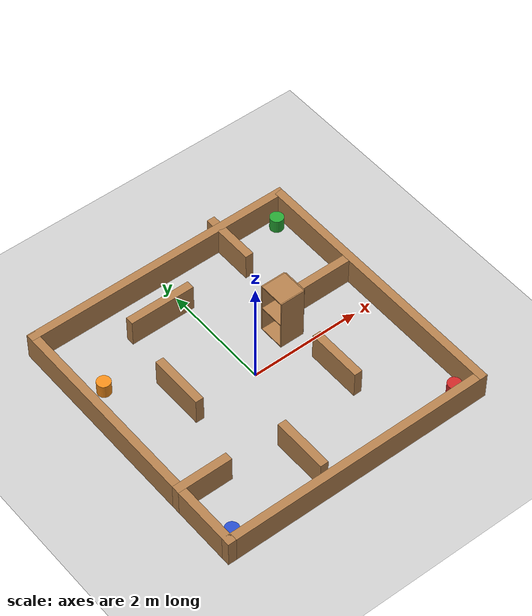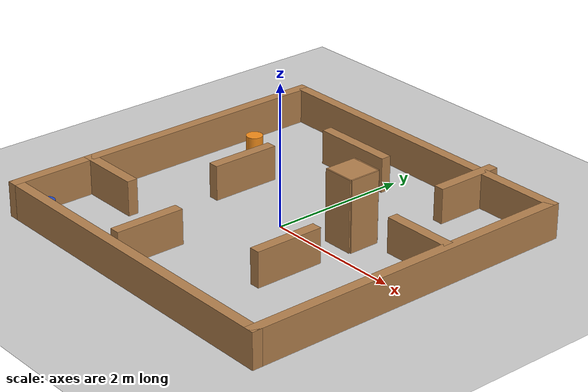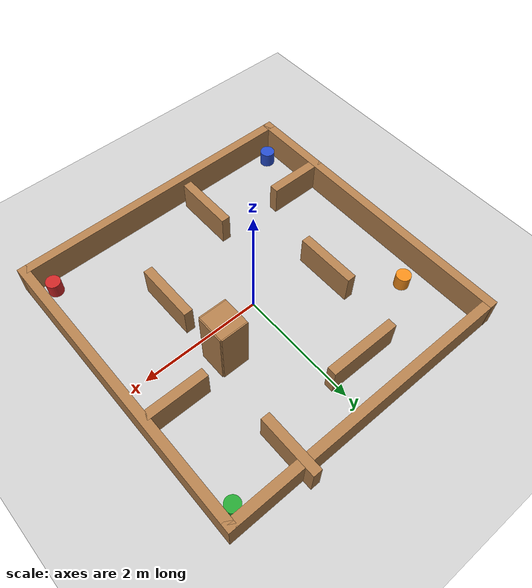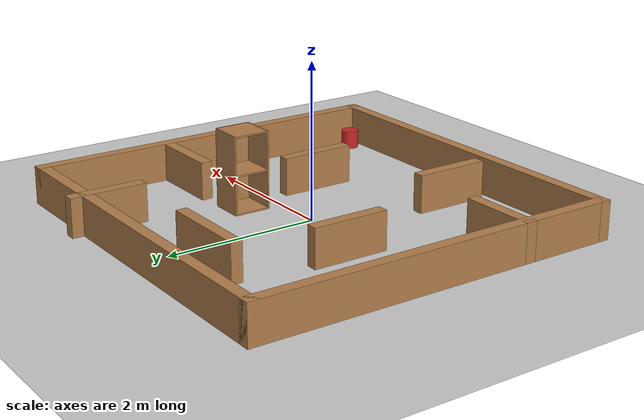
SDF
<sdf version="1.7">
 <world name="default">
  <model name="ground_plane">
   <static>1</static>
   <link name="link">
    <collision name="collision">
     <geometry><plane><normal>0 0 1</normal><size>100 100</size></plane></geometry>
     <surface><friction><ode><mu>100</mu><mu2>50</mu2></ode></friction></surface>
    </collision>
    <visual name="visual">
     <cast_shadows>0</cast_shadows>
     <geometry><plane><normal>0 0 1</normal><size>100 100</size></plane></geometry>
     <material>
      <script><uri>file://media/materials/scripts/gazebo.material</uri><name>Gazebo/Grey</name></script>
     </material>
    </visual>
   </link>
  </model>
  <light name="sun" type="directional">
   <pose>0 0 10 0 -0 0</pose>
   <diffuse>0.8 0.8 0.8 1</diffuse>
   <specular>0.2 0.2 0.2 1</specular>
   <attenuation>
    <range>1000</range>
    <constant>0.9</constant>
    <linear>0.01</linear>
    <quadratic>0.001</quadratic>
   </attenuation>
   <direction>-0.5 0.1 -0.9</direction>
   <spot><inner_angle>0</inner_angle><outer_angle>0</outer_angle><falloff>0</falloff></spot>
  </light>
  <scene><shadows>0</shadows><ambient>0.4 0.4 0.4 1</ambient><background>0.7 0.7 0.7 1</background></scene>
  <physics type="ode">
   <real_time_update_rate>1000</real_time_update_rate>
   <max_step_size>0.001</max_step_size>
   <real_time_factor>1</real_time_factor>
   <ode>
    <solver>
     <type>quick</type>
     <iters>150</iters>
     <precon_iters>0</precon_iters>
     <sor>1.4</sor>
     <use_dynamic_moi_rescaling>1</use_dynamic_moi_rescaling>
    </solver>
    <constraints>
     <cfm>1e-05</cfm>
     <erp>0.2</erp>
     <contact_max_correcting_vel>2000</contact_max_correcting_vel>
     <contact_surface_layer>0.01</contact_surface_layer>
    </constraints>
   </ode>
  </physics>
  <model name="turtlebot3_dqn_world">
   <static>1</static>
   <frame name="turtlebot3_square::__model__" attached_to="turtlebot3_square::Wall_1">
    <pose relative_to="__model__">0 0 0 0 -0 0</pose>
   </frame>
   <link name="turtlebot3_square::Wall_1">
    <collision name="Wall_1_Collision">
     <geometry><box><size>5 0.15 0.5</size></box></geometry>
     <pose>0 0 0.25 0 -0 0</pose>
    </collision>
    <visual name="Wall_1_Visual">
     <pose>0 0 0.25 0 -0 0</pose>
     <geometry><box><size>5 0.15 0.5</size></box></geometry>
     <material>
      <script><uri>file://media/materials/scripts/gazebo.material</uri><name>Gazebo/Wood</name></script>
      <ambient>1 1 1 1</ambient>
     </material>
    </visual>
    <pose relative_to="turtlebot3_square::__model__">-2.425 0 0 0 -0 1.5708</pose>
   </link>
   <link name="turtlebot3_square::Wall_2">
    <collision name="Wall_2_Collision">
     <geometry><box><size>5 0.15 0.5</size></box></geometry>
     <pose>0 0 0.25 0 -0 0</pose>
    </collision>
    <visual name="Wall_2_Visual">
     <pose>0 0 0.25 0 -0 0</pose>
     <geometry><box><size>5 0.15 0.5</size></box></geometry>
     <material>
      <script><uri>file://media/materials/scripts/gazebo.material</uri><name>Gazebo/Wood</name></script>
      <ambient>1 1 1 1</ambient>
     </material>
    </visual>
    <pose relative_to="turtlebot3_square::__model__">0 2.425 0 0 -0 0</pose>
   </link>
   <link name="turtlebot3_square::Wall_3">
    <collision name="Wall_3_Collision">
     <geometry><box><size>5 0.15 0.5</size></box></geometry>
     <pose>0 0 0.25 0 -0 0</pose>
    </collision>
    <visual name="Wall_3_Visual">
     <pose>0 0 0.25 0 -0 0</pose>
     <geometry><box><size>5 0.15 0.5</size></box></geometry>
     <material>
      <script><uri>file://media/materials/scripts/gazebo.material</uri><name>Gazebo/Wood</name></script>
      <ambient>1 1 1 1</ambient>
     </material>
    </visual>
    <pose relative_to="turtlebot3_square::__model__">2.425 0 0 0 0 -1.5708</pose>
   </link>
   <link name="turtlebot3_square::Wall_4">
    <collision name="Wall_4_Collision">
     <geometry><box><size>5 0.15 0.5</size></box></geometry>
     <pose>0 0 0.25 0 -0 0</pose>
    </collision>
    <visual name="Wall_4_Visual">
     <pose>0 0 0.25 0 -0 0</pose>
     <geometry><box><size>5 0.15 0.5</size></box></geometry>
     <material>
      <script><uri>file://media/materials/scripts/gazebo.material</uri><name>Gazebo/Wood</name></script>
      <ambient>1 1 1 1</ambient>
     </material>
    </visual>
    <pose relative_to="turtlebot3_square::__model__">0 -2.425 0 0 -0 3.14159</pose>
   </link>
   <static>1</static>
  </model>
  <model name="inner_walls">
   <pose>0 0.25 0 0 -0 0</pose>
   <link name="inner_wall_1">
    <collision name="inner_wall_1_collision">
     <geometry><box><size>1 0.15 0.5</size></box></geometry>
     <pose>0 0 0.25 0 -0 0</pose>
    </collision>
    <visual name="inner_wall_visual">
     <pose>0 0 0.25 0 -0 0</pose>
     <geometry><box><size>1 0.15 0.5</size></box></geometry>
     <material>
      <script><uri>file://media/materials/scripts/gazebo.material</uri><name>Gazebo/Wood</name></script>
      <ambient>1 1 1 1</ambient>
     </material>
    </visual>
    <pose>-2 -1.5 0 0 -0 0</pose>
   </link>
   <link name="inner_wall_2">
    <collision name="inner_wall_2_collision">
     <geometry><box><size>1 0.15 0.5</size></box></geometry>
     <pose>0 0 0.25 0 -0 0</pose>
    </collision>
    <visual name="inner_wall_2_visual">
     <pose>0 0 0.25 0 -0 0</pose>
     <geometry><box><size>1 0.15 0.5</size></box></geometry>
     <material>
      <script><uri>file://media/materials/scripts/gazebo.material</uri><name>Gazebo/Wood</name></script>
      <ambient>1 1 1 1</ambient>
     </material>
    </visual>
    <pose>-0.5 -2 0 0 0 -1.5708</pose>
   </link>
   <link name="inner_wall_3">
    <collision name="inner_wall_3_collision">
     <geometry><box><size>1 0.15 0.5</size></box></geometry>
     <pose>0 0 0.25 0 -0 0</pose>
    </collision>
    <visual name="inner_wall_3_visual">
     <pose>0 0 0.25 0 -0 0</pose>
     <geometry><box><size>1 0.15 0.5</size></box></geometry>
     <material>
      <script><uri>file://media/materials/scripts/gazebo.material</uri><name>Gazebo/Wood</name></script>
      <ambient>1 1 1 1</ambient>
     </material>
    </visual>
    <pose>1 -1 0 0 -0 1.5708</pose>
   </link>
   <link name="inner_wall_4">
    <collision name="inner_wall_4_collision">
     <geometry><box><size>1 0.15 0.5</size></box></geometry>
     <pose>0 0 0.25 0 -0 0</pose>
    </collision>
    <visual name="inner_wall_4_visual">
     <pose>0 0 0.25 0 -0 0</pose>
     <geometry><box><size>1 0.15 0.5</size></box></geometry>
     <material>
      <script><uri>file://media/materials/scripts/gazebo.material</uri><name>Gazebo/Wood</name></script>
      <ambient>1 1 1 1</ambient>
     </material>
    </visual>
    <pose>1.2 1.9 0 0 0 -1.5708</pose>
   </link>
   <link name="inner_wall_5">
    <collision name="inner_wall_5_collision">
     <geometry><box><size>1 0.15 0.5</size></box></geometry>
     <pose>0 0 0.25 0 -0 0</pose>
    </collision>
    <visual name="inner_wall_5_visual">
     <pose>0 0 0.25 0 -0 0</pose>
     <geometry><box><size>1 0.15 0.5</size></box></geometry>
     <material>
      <script><uri>file://media/materials/scripts/gazebo.material</uri><name>Gazebo/Wood</name></script>
      <ambient>1 1 1 1</ambient>
     </material>
    </visual>
    <pose>1.9 0.4 0 0 -0 0</pose>
   </link>
   <link name="inner_wall_6">
    <collision name="inner_wall_6_collision">
     <geometry><box><size>1.2 0.15 0.5</size></box></geometry>
     <pose>0 0 0.25 0 -0 0</pose>
    </collision>
    <visual name="inner_wall_6_visual">
     <pose>0 0 0.25 0 -0 0</pose>
     <geometry><box><size>1.2 0.15 0.5</size></box></geometry>
     <material>
      <script><uri>file://media/materials/scripts/gazebo.material</uri><name>Gazebo/Wood</name></script>
      <ambient>1 1 1 1</ambient>
     </material>
    </visual>
    <pose>-0.5 1.5 0 0 -0 0</pose>
   </link>
   <link name="inner_wall_7">
    <collision name="inner_wall_7_collision">
     <geometry><box><size>1 0.15 0.5</size></box></geometry>
     <pose>0 0 0.25 0 -0 0</pose>
    </collision>
    <visual name="inner_wall_7_visual">
     <pose>0 0 0.25 0 -0 0</pose>
     <geometry><box><size>1 0.15 0.5</size></box></geometry>
     <material>
      <script><uri>file://media/materials/scripts/gazebo.material</uri><name>Gazebo/Wood</name></script>
      <ambient>1 1 1 1</ambient>
     </material>
    </visual>
    <pose>-1.2 0.092 0 0 0 -1.5708</pose>
   </link>
   <link name="inner_wall_8">
    <collision name="inner_wall_8_collision">
     <geometry><box><size>1 0.15 0.5</size></box></geometry>
     <pose>0 0 0.25 0 -0 0</pose>
    </collision>
    <visual name="inner_wall_8_visual">
     <pose>0 0 0.25 0 -0 0</pose>
     <geometry><box><size>1 0.15 0.5</size></box></geometry>
     <material>
      <script><uri>file://media/materials/scripts/gazebo.material</uri><name>Gazebo/Wood</name></script>
      <ambient>1 1 1 1</ambient>
     </material>
    </visual>
    <pose>-1.2 0.092 0 0 0 -1.5708</pose>
   </link>
   <static>1</static>
  </model>
  <gravity>0 0 -9.8</gravity>
  <magnetic_field>6e-06 2.3e-05 -4.2e-05</magnetic_field>
  <atmosphere type="adiabatic"/>
  <audio><device>default</device></audio>
  <spherical_coordinates>
   <surface_model>EARTH_WGS84</surface_model>
   <latitude_deg>0</latitude_deg>
   <longitude_deg>0</longitude_deg>
   <elevation>0</elevation>
   <heading_deg>0</heading_deg>
  </spherical_coordinates>
  <model name="turtlebot3_dqn_obstacle2">
   <plugin name="obstacle2" filename="libobstacle2.so"/>
   <pose>2.19944 2.19665 0.125 -0 -0 -0</pose>
   <link name="obstacle2::link">
    <collision name="collision">
     <geometry><cylinder><radius>0.12</radius><length>0.25</length></cylinder></geometry>
    </collision>
    <visual name="visual">
     <geometry><cylinder><radius>0.12</radius><length>0.25</length></cylinder></geometry>
     <material>
      <script><uri>file://media/materials/scripts/gazebo.material</uri><name>Gazebo/Green</name></script>
     </material>
    </visual>
    <inertial>
     <inertia><ixx>1</ixx><ixy>0</ixy><ixz>0</ixz><iyy>1</iyy><iyz>0</iyz><izz>1</izz></inertia>
     <mass>1</mass>
    </inertial>
   </link>
  </model>
  <model name="turtlebot3_dqn_obstacle1">
   <plugin name="obstacle1" filename="libobstacle1.so"/>
   <pose>2.15215 -2.1643 0.125 -0 -0 -0</pose>
   <link name="obstacle1::link">
    <collision name="collision">
     <geometry><cylinder><radius>0.12</radius><length>0.25</length></cylinder></geometry>
    </collision>
    <visual name="visual">
     <geometry><cylinder><radius>0.12</radius><length>0.25</length></cylinder></geometry>
     <material>
      <script><uri>file://media/materials/scripts/gazebo.material</uri><name>Gazebo/Red</name></script>
     </material>
    </visual>
    <inertial>
     <inertia><ixx>1</ixx><ixy>0</ixy><ixz>0</ixz><iyy>1</iyy><iyz>0</iyz><izz>1</izz></inertia>
     <mass>1</mass>
    </inertial>
   </link>
  </model>
  <model name="turtlebot3_dqn_obstacle2_clone">
   <plugin name="obstacle2" filename="libobstacle2.so"/>
   <pose>-2.16386 -2.15851 0.124999 -0 -0 -0</pose>
   <link name="obstacle2::link">
    <collision name="collision">
     <geometry><cylinder><radius>0.12</radius><length>0.25</length></cylinder></geometry>
    </collision>
    <visual name="visual">
     <geometry><cylinder><radius>0.12</radius><length>0.25</length></cylinder></geometry>
     <material>
      <script><uri>file://media/materials/scripts/gazebo.material</uri><name>Gazebo/Blue</name></script>
     </material>
    </visual>
    <inertial>
     <inertia><ixx>1</ixx><ixy>0</ixy><ixz>0</ixz><iyy>1</iyy><iyz>0</iyz><izz>1</izz></inertia>
     <mass>1</mass>
    </inertial>
   </link>
  </model>
  <model name="turtlebot3_dqn_obstacle2_clone_0">
   <plugin name="obstacle2" filename="libobstacle2.so"/>
   <pose>-2.00398 1.20138 0.124991 0 -0 0</pose>
   <link name="obstacle2::link">
    <collision name="collision">
     <geometry><cylinder><radius>0.12</radius><length>0.25</length></cylinder></geometry>
    </collision>
    <visual name="visual">
     <geometry><cylinder><radius>0.12</radius><length>0.25</length></cylinder></geometry>
     <material>
      <script><uri>file://media/materials/scripts/gazebo.material</uri><name>Gazebo/Orange</name></script>
     </material>
    </visual>
    <inertial>
     <inertia><ixx>1</ixx><ixy>0</ixy><ixz>0</ixz><iyy>1</iyy><iyz>0</iyz><izz>1</izz></inertia>
     <mass>1</mass>
    </inertial>
   </link>
  </model>
  <model name="cabinet">
   <static>1</static>
   <link name="cabinet_bottom_plate">
    <inertial>
     <pose>0 0 -1 0 -0 0</pose>
     <inertia><ixx>2.05</ixx><ixy>0</ixy><ixz>0</ixz><iyy>2.05</iyy><iyz>0</iyz><izz>2.05</izz></inertia>
     <mass>25</mass>
    </inertial>
    <collision name="cabinet_bottom_plate_geom">
     <pose>0 0 0.01 0 -0 0</pose>
     <geometry><box><size>0.45 0.45 0.02</size></box></geometry>
    </collision>
    <visual name="cabinet_bottom_plate_geom_visual">
     <pose>0 0 0.01 0 -0 0</pose>
     <geometry><box><size>0.45 0.45 0.02</size></box></geometry>
     <material>
      <script><uri>file://media/materials/scripts/gazebo.material</uri><name>Gazebo/Wood</name></script>
     </material>
    </visual>
    <collision name="cabinet_bottom_plate_geom_cabinet_back_plate">
     <pose>0.235 0 0.51 0 -0 0</pose>
     <geometry><box><size>0.02 0.45 1.02</size></box></geometry>
    </collision>
    <visual name="cabinet_bottom_plate_geom_cabinet_back_plate_visual">
     <pose>0.235 0 0.51 0 -0 0</pose>
     <geometry><box><size>0.02 0.45 1.02</size></box></geometry>
     <material>
      <script><uri>file://media/materials/scripts/gazebo.material</uri><name>Gazebo/Wood</name></script>
     </material>
    </visual>
    <collision name="cabinet_bottom_plate_geom_cabinet_left_plate">
     <pose>0 0.235 0.51 0 -0 0</pose>
     <geometry><box><size>0.45 0.02 1.02</size></box></geometry>
    </collision>
    <visual name="cabinet_bottom_plate_geom_cabinet_left_plate_visual">
     <pose>0 0.235 0.51 0 -0 0</pose>
     <geometry><box><size>0.45 0.02 1.02</size></box></geometry>
     <material>
      <script><uri>file://media/materials/scripts/gazebo.material</uri><name>Gazebo/Wood</name></script>
     </material>
    </visual>
    <collision name="cabinet_bottom_plate_geom_cabinet_middle_plate">
     <pose>0 0 0.51 0 -0 0</pose>
     <geometry><box><size>0.45 0.45 0.02</size></box></geometry>
    </collision>
    <visual name="cabinet_bottom_plate_geom_cabinet_middle_plate_visual">
     <pose>0 0 0.51 0 -0 0</pose>
     <geometry><box><size>0.45 0.45 0.02</size></box></geometry>
     <material>
      <script><uri>file://media/materials/scripts/gazebo.material</uri><name>Gazebo/Wood</name></script>
     </material>
    </visual>
    <collision name="cabinet_bottom_plate_geom_cabinet_right_plate">
     <pose>0 -0.235 0.51 0 -0 0</pose>
     <geometry><box><size>0.45 0.02 1.02</size></box></geometry>
    </collision>
    <visual name="cabinet_bottom_plate_geom_cabinet_right_plate_visual">
     <pose>0 -0.235 0.51 0 -0 0</pose>
     <geometry><box><size>0.45 0.02 1.02</size></box></geometry>
     <material>
      <script><uri>file://media/materials/scripts/gazebo.material</uri><name>Gazebo/Wood</name></script>
     </material>
    </visual>
    <collision name="cabinet_bottom_plate_geom_cabinet_top_plate">
     <pose>0 0 1.01 0 -0 0</pose>
     <geometry><box><size>0.45 0.45 0.02</size></box></geometry>
    </collision>
    <visual name="cabinet_bottom_plate_geom_cabinet_top_plate_visual">
     <pose>0 0 1.01 0 -0 0</pose>
     <geometry><box><size>0.45 0.45 0.02</size></box></geometry>
     <material>
      <script><uri>file://media/materials/scripts/gazebo.material</uri><name>Gazebo/Wood</name></script>
     </material>
    </visual>
   </link>
   <pose>0.883182 0.434059 0 0 -0 0</pose>
  </model>
 </world>
</sdf>
